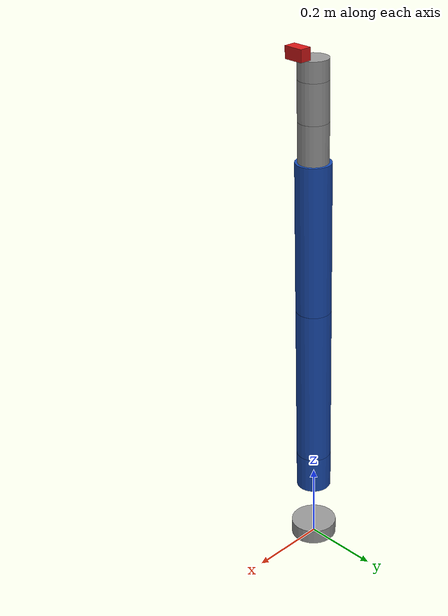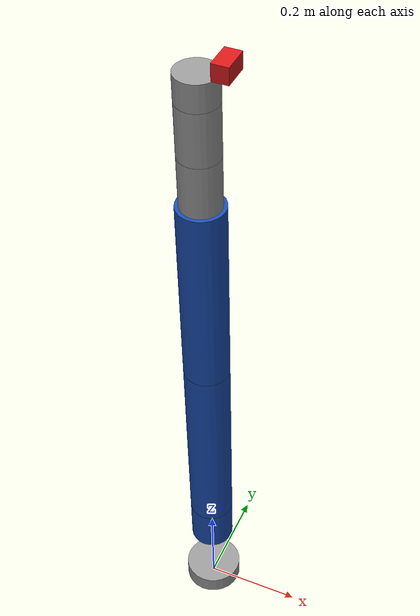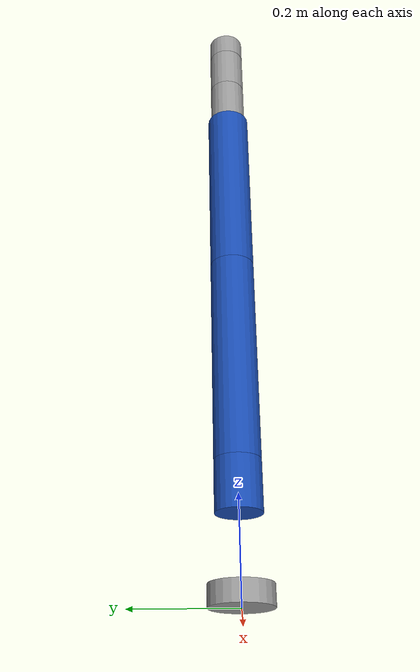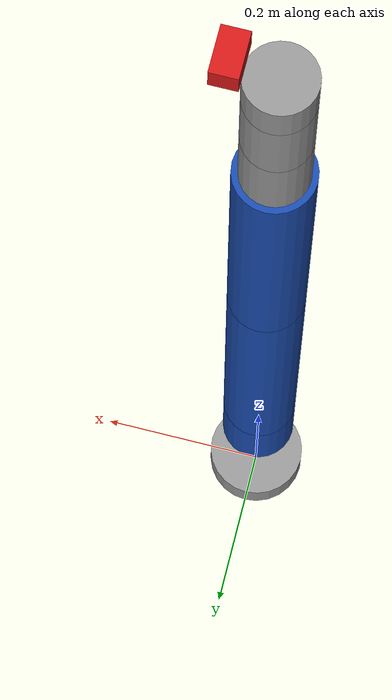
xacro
<?xml version="1.0"?>
<robot name="ur5e" xmlns:xacro="http://www.ros.org/wiki/xacro">

  <!-- Pull in the reusable macros (cylinder_link, solid_cylinder_inertial). -->
  <xacro:include filename="$(find irp_description)/urdf/common.xacro"/>

  <!-- ======================= PARAMETERS ======================= -->
  <!-- UR5e nominal kinematic segment lengths [m] (datasheet values). -->
  <xacro:property name="d1" value="0.1625"/>  <!-- base_link  -> shoulder      -->
  <xacro:property name="a2" value="0.425"/>   <!-- upper arm length            -->
  <xacro:property name="a3" value="0.3922"/>  <!-- forearm length              -->
  <xacro:property name="d5" value="0.0997"/>  <!-- wrist_1   -> wrist_2        -->
  <xacro:property name="d6" value="0.0996"/>  <!-- wrist_2   -> wrist_3        -->

  <!-- Cosmetic radii for the cylinder visuals. -->
  <xacro:property name="r_arm"   value="0.045"/>
  <xacro:property name="r_wrist" value="0.038"/>
  <xacro:property name="shoulder_len" value="0.10"/>
  <xacro:property name="wrist3_len"   value="0.05"/>

  <!-- Nominal joint limits: position ±2π, plus velocity/effort caps. -->
  <xacro:property name="pos_limit" value="${2*pi}"/>
  <xacro:property name="vel_limit" value="3.15"/>
  <xacro:property name="eff_limit" value="150.0"/>

  <!-- ======================= MATERIALS ======================= -->
  <material name="ur_blue">   <color rgba="0.10 0.30 0.70 1.0"/> </material>
  <material name="ur_grey">   <color rgba="0.60 0.60 0.60 1.0"/> </material>
  <material name="sensor_red"><color rgba="0.85 0.10 0.10 1.0"/> </material>

  <!-- ======================= LINKS ======================= -->

  <!-- base_link: world-fixed root of BOTH the kinematic tree and the TF tree. -->
  <link name="base_link">
    <visual>
      <origin xyz="0 0 0.02" rpy="0 0 0"/>
      <geometry><cylinder radius="0.06" length="0.04"/></geometry>
      <material name="ur_grey"/>
    </visual>
    <collision>
      <origin xyz="0 0 0.02" rpy="0 0 0"/>
      <geometry><cylinder radius="0.06" length="0.04"/></geometry>
    </collision>
    <xacro:solid_cylinder_inertial radius="0.06" length="0.04" mass="2.0"/>
  </link>

  <!-- Arm links, built from the reusable macro (this is xacro paying off). -->
  <xacro:cylinder_link name="shoulder_link"  radius="${r_arm}"   length="${shoulder_len}" mass="3.00" material="ur_blue"/>
  <xacro:cylinder_link name="upper_arm_link" radius="${r_arm}"   length="${a2}"           mass="8.00" material="ur_blue"/>
  <xacro:cylinder_link name="forearm_link"   radius="${r_arm}"   length="${a3}"           mass="2.50" material="ur_blue"/>
  <xacro:cylinder_link name="wrist_1_link"   radius="${r_wrist}" length="${d5}"           mass="1.30" material="ur_grey"/>
  <xacro:cylinder_link name="wrist_2_link"   radius="${r_wrist}" length="${d6}"           mass="1.30" material="ur_grey"/>
  <xacro:cylinder_link name="wrist_3_link"   radius="${r_wrist}" length="${wrist3_len}"   mass="0.35" material="ur_grey"/>

  <!-- tool0: UR convention for the tool flange frame. Zero-size = pure frame. -->
  <link name="tool0"/>

  <!-- camera_link: a wrist-mounted sensor. Attached by a FIXED joint below,
       so it only ever shows up on /tf_static (static transform). -->
  <link name="camera_link">
    <visual>
      <origin xyz="0 0 0" rpy="0 0 0"/>
      <geometry><box size="0.03 0.05 0.03"/></geometry>
      <material name="sensor_red"/>
    </visual>
  </link>

  <!-- ======================= JOINTS ======================= -->
  <!-- UR5e revolute axis pattern: Z, Y, Y, Y, Z, Y. -->

  <joint name="shoulder_pan_joint" type="revolute">
    <parent link="base_link"/>
    <child  link="shoulder_link"/>
    <origin xyz="0 0 ${d1}" rpy="0 0 0"/>
    <axis xyz="0 0 1"/>
    <limit lower="${-pos_limit}" upper="${pos_limit}" velocity="${vel_limit}" effort="${eff_limit}"/>
  </joint>

  <joint name="shoulder_lift_joint" type="revolute">
    <parent link="shoulder_link"/>
    <child  link="upper_arm_link"/>
    <origin xyz="0 0 ${shoulder_len}" rpy="0 0 0"/>
    <axis xyz="0 1 0"/>
    <limit lower="${-pos_limit}" upper="${pos_limit}" velocity="${vel_limit}" effort="${eff_limit}"/>
  </joint>

  <joint name="elbow_joint" type="revolute">
    <parent link="upper_arm_link"/>
    <child  link="forearm_link"/>
    <origin xyz="0 0 ${a2}" rpy="0 0 0"/>
    <axis xyz="0 1 0"/>
    <limit lower="${-pos_limit}" upper="${pos_limit}" velocity="${vel_limit}" effort="${eff_limit}"/>
  </joint>

  <joint name="wrist_1_joint" type="revolute">
    <parent link="forearm_link"/>
    <child  link="wrist_1_link"/>
    <origin xyz="0 0 ${a3}" rpy="0 0 0"/>
    <axis xyz="0 1 0"/>
    <limit lower="${-pos_limit}" upper="${pos_limit}" velocity="${vel_limit}" effort="${eff_limit}"/>
  </joint>

  <joint name="wrist_2_joint" type="revolute">
    <parent link="wrist_1_link"/>
    <child  link="wrist_2_link"/>
    <origin xyz="0 0 ${d5}" rpy="0 0 0"/>
    <axis xyz="0 0 1"/>
    <limit lower="${-pos_limit}" upper="${pos_limit}" velocity="${vel_limit}" effort="${eff_limit}"/>
  </joint>

  <joint name="wrist_3_joint" type="revolute">
    <parent link="wrist_2_link"/>
    <child  link="wrist_3_link"/>
    <origin xyz="0 0 ${d6}" rpy="0 0 0"/>
    <axis xyz="0 1 0"/>
    <limit lower="${-pos_limit}" upper="${pos_limit}" velocity="${vel_limit}" effort="${eff_limit}"/>
  </joint>

  <!-- Fixed joint: flange frame. Fixed => goes on /tf_static, not /tf. -->
  <joint name="tool0_fixed_joint" type="fixed">
    <parent link="wrist_3_link"/>
    <child  link="tool0"/>
    <origin xyz="0 0 ${wrist3_len}" rpy="0 0 0"/>
  </joint>

  <!-- STATIC sensor mount. The translation+rotation here is exactly the kind of
       "sensor offset from base/tool" that, in an AV, lives on /tf_static. -->
  <joint name="camera_mount_joint" type="fixed">
    <parent link="tool0"/>
    <child  link="camera_link"/>
    <origin xyz="0.05 0 0.02" rpy="0 ${-pi/2} 0"/>
  </joint>

</robot>

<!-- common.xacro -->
<robot xmlns:xacro="http://www.ros.org/wiki/xacro">

  <xacro:macro name="cylinder_link" params="name radius length mass material">
    <link name="${name}">
      <visual>
        <origin xyz="0 0 ${length/2}" rpy="0 0 0"/>
        <geometry>
          <cylinder radius="${radius}" length="${length}"/>
        </geometry>
        <material name="${material}"/>
      </visual>
      <collision>
        <origin xyz="0 0 ${length/2}" rpy="0 0 0"/>
        <geometry>
          <cylinder radius="${radius}" length="${length}"/>
        </geometry>
      </collision>
      <xacro:solid_cylinder_inertial radius="${radius}" length="${length}" mass="${mass}"/>
    </link>
  </xacro:macro>

  <xacro:macro name="solid_cylinder_inertial" params="radius length mass">
    <inertial>
      <origin xyz="0 0 ${length/2}" rpy="0 0 0"/>
      <mass value="${mass}"/>
      <inertia
        ixx="${(1.0/12.0) * mass * (3.0*radius*radius + length*length)}" ixy="0.0" ixz="0.0"
        iyy="${(1.0/12.0) * mass * (3.0*radius*radius + length*length)}" iyz="0.0"
        izz="${0.5 * mass * radius*radius}"/>
    </inertial>
  </xacro:macro>

</robot>
